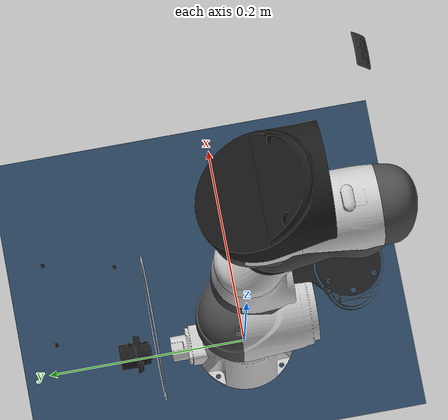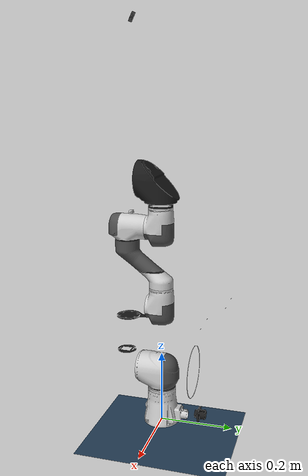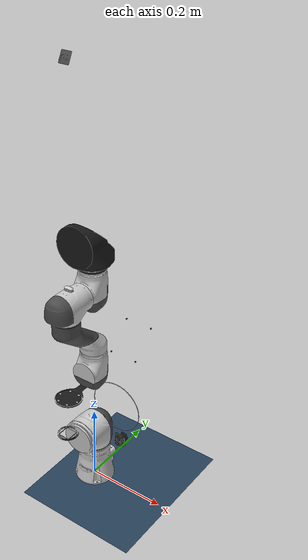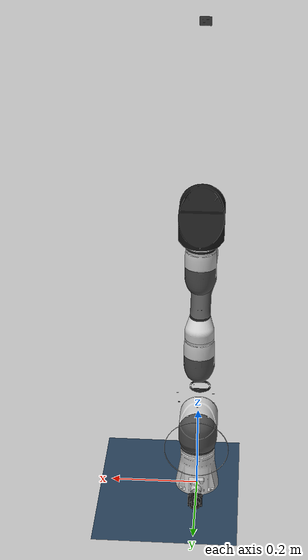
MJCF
<mujoco model="rb1_500es_u">
  <compiler angle="radian" />
  <asset>
    <mesh name="link0" content_type="model/stl" file="../meshes/rb1_500es_u/collision/link0.stl" />
    <mesh name="link1" content_type="model/stl" file="../meshes/rb1_500es_u/collision/link1.stl" />
    <mesh name="link2" content_type="model/stl" file="../meshes/rb1_500es_u/collision/link2.stl" />
    <mesh name="link3" content_type="model/stl" file="../meshes/rb1_500es_u/collision/link3.stl" />
    <mesh name="link4" content_type="model/stl" file="../meshes/rb1_500es_u/collision/link4.stl" />
    <mesh name="link5" content_type="model/stl" file="../meshes/rb1_500es_u/collision/link5.stl" />
    <mesh name="link6" content_type="model/obj" file="../meshes/rb1_500es_u/collision/link6.obj" />
    <texture type="skybox" builtin="gradient" rgb1="0.3 0.5 0.7" rgb2="0 0 0" width="512" height="3072" />
    <texture type="2d" name="groundplane" builtin="checker" mark="edge" rgb1="0.2 0.3 0.4" rgb2="0.1 0.2 0.3" markrgb="0.8 0.8 0.8" width="300" height="300" />
    <material name="groundplane" texture="groundplane" texuniform="true" texrepeat="5 5" reflectance="0.2" />
    <mesh name="link0_visual_0" file="../meshes/rb1_500es_u/visual/link0_visual_0.obj" />
    <material name="link0_visual_0" rgba="0.8 0.8 0.8 1" specular="0" />
    <mesh name="link0_visual_1" file="../meshes/rb1_500es_u/visual/link0_visual_1.obj" />
    <material name="link0_visual_1" rgba="0.1 0.1 0.1 1" specular="0" />
    <mesh name="link1_visual_0" file="../meshes/rb1_500es_u/visual/link1_visual_0.obj" />
    <material name="link1_visual_0" rgba="0.8 0.8 0.8 1" specular="0" />
    <mesh name="link1_visual_1" file="../meshes/rb1_500es_u/visual/link1_visual_1.obj" />
    <material name="link1_visual_1" rgba="0.3 0.3 0.3 1" specular="0" />
    <mesh name="link1_visual_2" file="../meshes/rb1_500es_u/visual/link1_visual_2.obj" />
    <material name="link1_visual_2" rgba="0.1 0.1 0.1 1" specular="0" />
    <mesh name="link2_visual_0" file="../meshes/rb1_500es_u/visual/link2_visual_0.obj" />
    <material name="link2_visual_0" rgba="0.8 0.8 0.8 1" specular="0" />
    <mesh name="link2_visual_1" file="../meshes/rb1_500es_u/visual/link2_visual_1.obj" />
    <material name="link2_visual_1" rgba="0.3 0.3 0.3 1" specular="0" />
    <mesh name="link2_visual_2" file="../meshes/rb1_500es_u/visual/link2_visual_2.obj" />
    <material name="link2_visual_2" rgba="0.1 0.1 0.1 1" specular="0" />
    <mesh name="link3_visual_0" file="../meshes/rb1_500es_u/visual/link3_visual_0.obj" />
    <material name="link3_visual_0" rgba="0.8 0.8 0.8 1" specular="0" />
    <mesh name="link3_visual_1" file="../meshes/rb1_500es_u/visual/link3_visual_1.obj" />
    <material name="link3_visual_1" rgba="0.3 0.3 0.3 1" specular="0" />
    <mesh name="link3_visual_2" file="../meshes/rb1_500es_u/visual/link3_visual_2.obj" />
    <material name="link3_visual_2" rgba="0.1 0.1 0.1 1" specular="0" />
    <mesh name="link4_visual_0" file="../meshes/rb1_500es_u/visual/link4_visual_0.obj" />
    <material name="link4_visual_0" rgba="0.8 0.8 0.8 1" specular="0" />
    <mesh name="link4_visual_1" file="../meshes/rb1_500es_u/visual/link4_visual_1.obj" />
    <material name="link4_visual_1" rgba="0.3 0.3 0.3 1" specular="0" />
    <mesh name="link4_visual_2" file="../meshes/rb1_500es_u/visual/link4_visual_2.obj" />
    <material name="link4_visual_2" rgba="0.1 0.1 0.1 1" specular="0" />
    <mesh name="link5_visual_0" file="../meshes/rb1_500es_u/visual/link5_visual_0.obj" />
    <material name="link5_visual_0" rgba="0.8 0.8 0.8 1" specular="0" />
    <mesh name="link5_visual_1" file="../meshes/rb1_500es_u/visual/link5_visual_1.obj" />
    <material name="link5_visual_1" rgba="0.3 0.3 0.3 1" specular="0" />
    <mesh name="link5_visual_2" file="../meshes/rb1_500es_u/visual/link5_visual_2.obj" />
    <material name="link5_visual_2" rgba="0.1 0.1 0.1 1" specular="0" />
    <mesh name="link6_visual_0" file="../meshes/rb1_500es_u/visual/link6_visual_0.obj" />
    <material name="link6_visual_0" rgba="0.8 0.8 0.8 1" specular="0" />
    <mesh name="link6_visual_1" file="../meshes/rb1_500es_u/visual/link6_visual_1.obj" />
    <material name="link6_visual_1" rgba="0.1 0.1 0.1 1" specular="0" />
  </asset>
  <worldbody>
    <body name="link0" gravcomp="1">
      <geom type="mesh" mesh="link0" group="3" />
      <body name="link1" pos="0 0 0.1568" gravcomp="1">
        <inertial pos="-2.208e-05 -0.0298121 -0.00332683" quat="0.835836 0.548933 -0.00423031 0.00569419" mass="1.23359" diaginertia="0.00138439 0.00133106 0.00102559" />
        <joint name="base" pos="0 0 0" axis="0 0 1" range="-3.14 3.14" />
        <geom type="mesh" mesh="link1" group="3" />
        <body name="link2" gravcomp="1">
          <inertial pos="6.274e-05 -0.0825786 0.133846" quat="0.998168 -0.0603328 0.000253102 0.00445592" mass="1.08411" diaginertia="0.0057702 0.00546428 0.000830627" />
          <joint name="shoulder" pos="0 0 0" axis="0 1 0" range="-3.14 3.14" />
          <geom type="mesh" mesh="link2" group="3" />
          <body name="link3" pos="0 0 0.18" gravcomp="1">
            <inertial pos="-8.419e-05 -0.00101844 0.0201505" quat="0.999462 -0.0263867 0.00554836 0.0186969" mass="0.665963" diaginertia="0.000582378 0.000567228 0.000321684" />
            <joint name="elbow" pos="0 0 0" axis="0 1 0" range="-3.14 3.14" />
            <geom type="mesh" mesh="link3" group="3" />
            <body name="link4" gravcomp="1">
              <inertial pos="8.446e-05 -0.0682434 0.188915" quat="0.975334 0.22072 -0.000307649 0.002407" mass="0.984119" diaginertia="0.00373641 0.00328602 0.000892831" />
              <joint name="wrist1" pos="0 0 0" axis="0 0 1" range="-3.14 3.14" />
              <geom type="mesh" mesh="link4" group="3" />
              <body name="link5" pos="0 0 0.2198" gravcomp="1">
                <inertial pos="-8.419e-05 -0.00101844 0.0201505" quat="0.999462 -0.0263867 0.00554836 0.0186969" mass="0.665963" diaginertia="0.000582378 0.000567228 0.000321684" />
                <joint name="wrist2" pos="0 0 0" axis="0 1 0" range="-3.14 3.14" />
                <geom type="mesh" mesh="link5" group="3" />
                <body name="link6" gravcomp="1">
                  <inertial pos="-0.001 -0.001 0.068" quat="0.388948 0.591048 -0.388708 0.590159" mass="0.211" diaginertia="0.000723151 0.000552915 0.000262334" />
                  <joint name="wrist3" pos="0 0 0" axis="0 0 1" range="-3.14 3.14" />
                  <geom type="mesh" mesh="link6" group="3" />
                  <body name="tcp" pos="0 0 0.1" gravcomp="1" />
                  <geom type="mesh" mesh="link6_visual_0" material="link6_visual_0" group="2" contype="0" conaffinity="0" density="0" />
                  <geom type="mesh" mesh="link6_visual_1" material="link6_visual_1" group="2" contype="0" conaffinity="0" density="0" />
                </body>
                <geom type="mesh" mesh="link5_visual_0" material="link5_visual_0" group="2" contype="0" conaffinity="0" density="0" />
                <geom type="mesh" mesh="link5_visual_1" material="link5_visual_1" group="2" contype="0" conaffinity="0" density="0" />
                <geom type="mesh" mesh="link5_visual_2" material="link5_visual_2" group="2" contype="0" conaffinity="0" density="0" />
              </body>
              <geom type="mesh" mesh="link4_visual_0" material="link4_visual_0" group="2" contype="0" conaffinity="0" density="0" />
              <geom type="mesh" mesh="link4_visual_1" material="link4_visual_1" group="2" contype="0" conaffinity="0" density="0" />
              <geom type="mesh" mesh="link4_visual_2" material="link4_visual_2" group="2" contype="0" conaffinity="0" density="0" />
            </body>
            <geom type="mesh" mesh="link3_visual_0" material="link3_visual_0" group="2" contype="0" conaffinity="0" density="0" />
            <geom type="mesh" mesh="link3_visual_1" material="link3_visual_1" group="2" contype="0" conaffinity="0" density="0" />
            <geom type="mesh" mesh="link3_visual_2" material="link3_visual_2" group="2" contype="0" conaffinity="0" density="0" />
          </body>
          <geom type="mesh" mesh="link2_visual_0" material="link2_visual_0" group="2" contype="0" conaffinity="0" density="0" />
          <geom type="mesh" mesh="link2_visual_1" material="link2_visual_1" group="2" contype="0" conaffinity="0" density="0" />
          <geom type="mesh" mesh="link2_visual_2" material="link2_visual_2" group="2" contype="0" conaffinity="0" density="0" />
        </body>
        <geom type="mesh" mesh="link1_visual_0" material="link1_visual_0" group="2" contype="0" conaffinity="0" density="0" />
        <geom type="mesh" mesh="link1_visual_1" material="link1_visual_1" group="2" contype="0" conaffinity="0" density="0" />
        <geom type="mesh" mesh="link1_visual_2" material="link1_visual_2" group="2" contype="0" conaffinity="0" density="0" />
      </body>
      <geom type="mesh" mesh="link0_visual_0" material="link0_visual_0" group="2" contype="0" conaffinity="0" density="0" />
      <geom type="mesh" mesh="link0_visual_1" material="link0_visual_1" group="2" contype="0" conaffinity="0" density="0" />
    </body>
    <light pos="0 0 4" dir="0 0 -1" directional="true" />
    <geom name="floor" type="plane" size="0 0 0.05" material="groundplane" />
  </worldbody>
  <option timestep="0.0005" integrator="implicitfast" />
  <visual>
    <headlight diffuse="0.6 0.6 0.6" ambient="0.3 0.3 0.3" specular="0 0 0" />
    <rgba haze="0.15 0.25 0.35 1" />
    <global azimuth="140" elevation="-20" />
  </visual>
  <contact>
    <exclude body1="link0" body2="link1" />
  </contact>
  <statistic center="-4.7029927e-05 -0.034859251 0.3284" extent="0.69955723" />
  <actuator>
    <position name="base" joint="base" kp="2000" dampratio="2" ctrlrange="-3.14 3.14" />
    <position name="shoulder" joint="shoulder" kp="2000" dampratio="2" ctrlrange="-3.14 3.14" />
    <position name="elbow" joint="elbow" kp="2000" dampratio="2" ctrlrange="-3.14 3.14" />
    <position name="wrist1" joint="wrist1" kp="2000" dampratio="2" ctrlrange="-3.14 3.14" />
    <position name="wrist2" joint="wrist2" kp="2000" dampratio="2" ctrlrange="-3.14 3.14" />
    <position name="wrist3" joint="wrist3" kp="2000" dampratio="2" ctrlrange="-3.14 3.14" />
  </actuator>
</mujoco>
